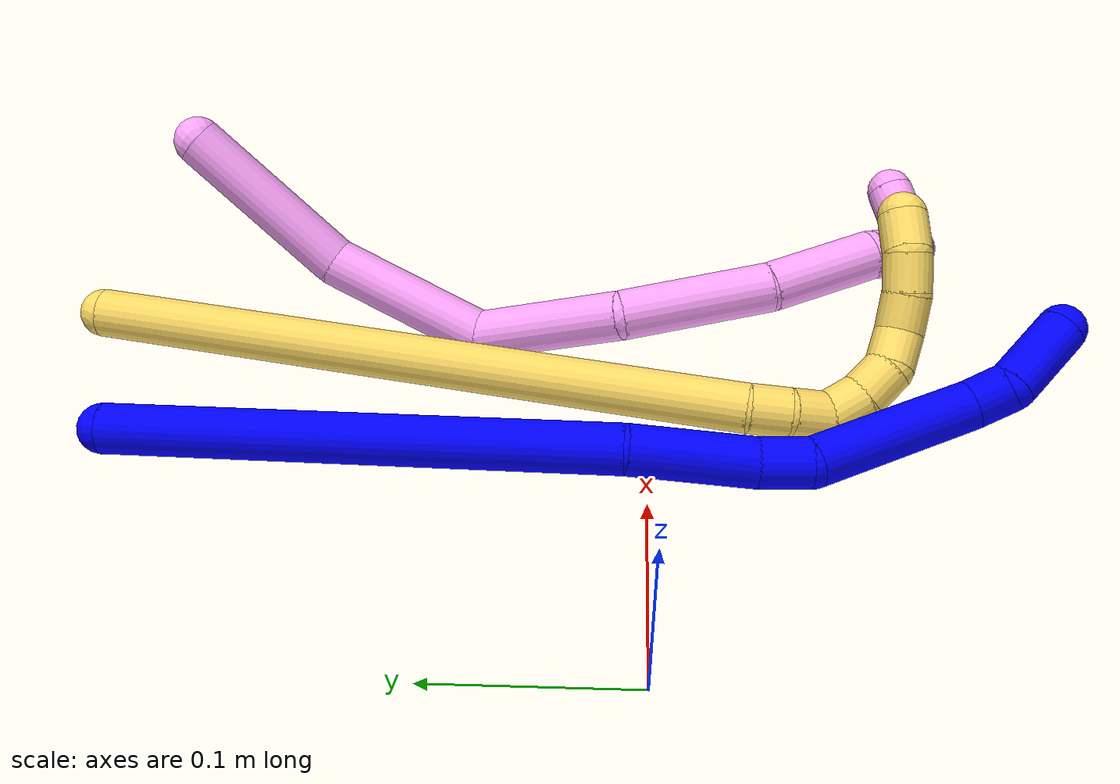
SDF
<sdf version="1.7">
 <world name="default">
  <model name="bin">
   <static>1</static>
   <link name="bottom">
    <collision name="collision-bottom">
     <pose>0 0 -0.01 0 -0 0</pose>
     <geometry><box><size>0.8 0.6 0.02</size></box></geometry>
     <surface>
      <friction><ode><mu>100</mu><mu2>100</mu2></ode></friction>
      <contact><collide_bitmask>65535</collide_bitmask></contact>
     </surface>
    </collision>
   </link>
   <link name="west_wall">
    <collision name="collision-west_wall">
     <pose>-0.41 0 0.1 0 -0 0</pose>
     <geometry><box><size>0.02 0.6 0.2</size></box></geometry>
     <surface>
      <friction><ode><mu>100</mu><mu2>100</mu2></ode></friction>
      <contact><collide_bitmask>65535</collide_bitmask></contact>
     </surface>
    </collision>
   </link>
   <link name="east_wall">
    <collision name="collision-east_wall">
     <pose>0.41 0 0.1 0 -0 0</pose>
     <geometry><box><size>0.02 0.6 0.2</size></box></geometry>
     <surface>
      <friction><ode><mu>100</mu><mu2>100</mu2></ode></friction>
      <contact><collide_bitmask>65535</collide_bitmask></contact>
     </surface>
    </collision>
   </link>
   <link name="south_wall">
    <collision name="collision-south_wall">
     <pose>0 -0.31 0.1 0 -0 0</pose>
     <geometry><box><size>0.8 0.02 0.2</size></box></geometry>
     <surface>
      <friction><ode><mu>100</mu><mu2>100</mu2></ode></friction>
      <contact><collide_bitmask>65535</collide_bitmask></contact>
     </surface>
    </collision>
   </link>
   <link name="north_wall">
    <collision name="collision-north_wall">
     <pose>0 0.31 0.1 0 -0 0</pose>
     <geometry><box><size>0.8 0.02 0.2</size></box></geometry>
     <surface>
      <friction><ode><mu>100</mu><mu2>100</mu2></ode></friction>
      <contact><collide_bitmask>65535</collide_bitmask></contact>
     </surface>
    </collision>
   </link>
  </model>
  <model name="1">
   <static>0</static>
   <link name="1">
    <collision name="collision-cylinder-e_1_1_4">
     <pose>-0.019524 -0.123714 -0.022829 1.75327 -0.153968 -0.184817</pose>
     <geometry><cylinder><radius>0.0125</radius><length>0.254617</length></cylinder></geometry>
     <surface>
      <friction><ode><mu>1.16</mu><mu2>1.16</mu2><slip1>0</slip1><slip2>0</slip2></ode></friction>
      <contact><ode><kp>1e+06</kp><kd>1</kd><max_vel>0</max_vel><min_depth>0.001</min_depth></ode></contact>
     </surface>
    </collision>
    <visual name="visual-cylinder-e_1_1_4">
     <pose>-0.019524 -0.123714 -0.022829 1.75327 -0.153968 -0.184817</pose>
     <geometry><cylinder><radius>0.0125</radius><length>0.254617</length></cylinder></geometry>
     <material><ambient>0 0 1 1</ambient></material>
    </visual>
    <collision name="collision-cylinder-e_2_4_5">
     <pose>-0.037356 -0.277705 -0.054375 1.85114 0.053669 0.071289</pose>
     <geometry><cylinder><radius>0.0125</radius><length>0.063104</length></cylinder></geometry>
     <surface>
      <friction><ode><mu>1.16</mu><mu2>1.16</mu2><slip1>0</slip1><slip2>0</slip2></ode></friction>
      <contact><ode><kp>1e+06</kp><kd>1</kd><max_vel>0</max_vel><min_depth>0.001</min_depth></ode></contact>
     </surface>
    </collision>
    <visual name="visual-cylinder-e_2_4_5">
     <pose>-0.037356 -0.277705 -0.054375 1.85114 0.053669 0.071289</pose>
     <geometry><cylinder><radius>0.0125</radius><length>0.063104</length></cylinder></geometry>
     <material><ambient>0 0 1 1</ambient></material>
    </visual>
    <collision name="collision-cylinder-e_3_5_6">
     <pose>-0.036421 -0.320778 -0.065133 1.72892 -0.05843 -0.068478</pose>
     <geometry><cylinder><radius>0.0125</radius><length>0.025962</length></cylinder></geometry>
     <surface>
      <friction><ode><mu>1.16</mu><mu2>1.16</mu2><slip1>0</slip1><slip2>0</slip2></ode></friction>
      <contact><ode><kp>1e+06</kp><kd>1</kd><max_vel>0</max_vel><min_depth>0.001</min_depth></ode></contact>
     </surface>
    </collision>
    <visual name="visual-cylinder-e_3_5_6">
     <pose>-0.036421 -0.320778 -0.065133 1.72892 -0.05843 -0.068478</pose>
     <geometry><cylinder><radius>0.0125</radius><length>0.025962</length></cylinder></geometry>
     <material><ambient>0 0 1 1</ambient></material>
    </visual>
    <collision name="collision-cylinder-e_4_6_7">
     <pose>-0.021456 -0.377392 -0.062992 1.47566 0.343093 0.31244</pose>
     <geometry><cylinder><radius>0.0125</radius><length>0.093479</length></cylinder></geometry>
     <surface>
      <friction><ode><mu>1.16</mu><mu2>1.16</mu2><slip1>0</slip1><slip2>0</slip2></ode></friction>
      <contact><ode><kp>1e+06</kp><kd>1</kd><max_vel>0</max_vel><min_depth>0.001</min_depth></ode></contact>
     </surface>
    </collision>
    <visual name="visual-cylinder-e_4_6_7">
     <pose>-0.021456 -0.377392 -0.062992 1.47566 0.343093 0.31244</pose>
     <geometry><cylinder><radius>0.0125</radius><length>0.093479</length></cylinder></geometry>
     <material><ambient>0 0 1 1</ambient></material>
    </visual>
    <collision name="collision-cylinder-e_5_7_8">
     <pose>-0.00827 -0.431105 -0.055356 1.23495 -0.237482 -0.169031</pose>
     <geometry><cylinder><radius>0.0125</radius><length>0.02157</length></cylinder></geometry>
     <surface>
      <friction><ode><mu>1.16</mu><mu2>1.16</mu2><slip1>0</slip1><slip2>0</slip2></ode></friction>
      <contact><ode><kp>1e+06</kp><kd>1</kd><max_vel>0</max_vel><min_depth>0.001</min_depth></ode></contact>
     </surface>
    </collision>
    <visual name="visual-cylinder-e_5_7_8">
     <pose>-0.00827 -0.431105 -0.055356 1.23495 -0.237482 -0.169031</pose>
     <geometry><cylinder><radius>0.0125</radius><length>0.02157</length></cylinder></geometry>
     <material><ambient>0 0 1 1</ambient></material>
    </visual>
    <collision name="collision-cylinder-e_6_8_2">
     <pose>-0.004569 -0.457379 -0.041009 0.983873 0.307126 0.165509</pose>
     <geometry><cylinder><radius>0.0125</radius><length>0.041267</length></cylinder></geometry>
     <surface>
      <friction><ode><mu>1.16</mu><mu2>1.16</mu2><slip1>0</slip1><slip2>0</slip2></ode></friction>
      <contact><ode><kp>1e+06</kp><kd>1</kd><max_vel>0</max_vel><min_depth>0.001</min_depth></ode></contact>
     </surface>
    </collision>
    <visual name="visual-cylinder-e_6_8_2">
     <pose>-0.004569 -0.457379 -0.041009 0.983873 0.307126 0.165509</pose>
     <geometry><cylinder><radius>0.0125</radius><length>0.041267</length></cylinder></geometry>
     <material><ambient>0 0 1 1</ambient></material>
    </visual>
    <collision name="collision-sphere-2">
     <pose>0.001669 -0.473755 -0.030117 0 -0 0</pose>
     <geometry><sphere><radius>0.0125</radius></sphere></geometry>
     <surface>
      <friction><ode><mu>1.16</mu><mu2>1.16</mu2><slip1>0</slip1><slip2>0</slip2></ode></friction>
      <contact><ode><kp>1e+06</kp><kd>1</kd><max_vel>0</max_vel><min_depth>0.001</min_depth></ode></contact>
     </surface>
    </collision>
    <visual name="visual-sphere-2">
     <pose>0.001669 -0.473755 -0.030117 0 -0 0</pose>
     <geometry><sphere><radius>0.0125</radius></sphere></geometry>
     <material><ambient>0 0 1 1</ambient></material>
    </visual>
    <collision name="collision-sphere-4">
     <pose>-0.039048 -0.247428 -0.045657 0 -0 0</pose>
     <geometry><sphere><radius>0.0125</radius></sphere></geometry>
     <surface>
      <friction><ode><mu>1.16</mu><mu2>1.16</mu2><slip1>0</slip1><slip2>0</slip2></ode></friction>
      <contact><ode><kp>1e+06</kp><kd>1</kd><max_vel>0</max_vel><min_depth>0.001</min_depth></ode></contact>
     </surface>
    </collision>
    <visual name="visual-sphere-4">
     <pose>-0.039048 -0.247428 -0.045657 0 -0 0</pose>
     <geometry><sphere><radius>0.0125</radius></sphere></geometry>
     <material><ambient>0 0 1 1</ambient></material>
    </visual>
    <collision name="collision-sphere-1">
     <geometry><sphere><radius>0.0125</radius></sphere></geometry>
     <surface>
      <friction><ode><mu>1.16</mu><mu2>1.16</mu2><slip1>0</slip1><slip2>0</slip2></ode></friction>
      <contact><ode><kp>1e+06</kp><kd>1</kd><max_vel>0</max_vel><min_depth>0.001</min_depth></ode></contact>
     </surface>
    </collision>
    <visual name="visual-sphere-1">
     <geometry><sphere><radius>0.0125</radius></sphere></geometry>
     <material><ambient>0 0 1 1</ambient></material>
    </visual>
    <collision name="collision-sphere-8">
     <pose>-0.010807 -0.441002 -0.051901 0 -0 0</pose>
     <geometry><sphere><radius>0.0125</radius></sphere></geometry>
     <surface>
      <friction><ode><mu>1.16</mu><mu2>1.16</mu2><slip1>0</slip1><slip2>0</slip2></ode></friction>
      <contact><ode><kp>1e+06</kp><kd>1</kd><max_vel>0</max_vel><min_depth>0.001</min_depth></ode></contact>
     </surface>
    </collision>
    <visual name="visual-sphere-8">
     <pose>-0.010807 -0.441002 -0.051901 0 -0 0</pose>
     <geometry><sphere><radius>0.0125</radius></sphere></geometry>
     <material><ambient>0 0 1 1</ambient></material>
    </visual>
    <collision name="collision-sphere-5">
     <pose>-0.035663 -0.307981 -0.063092 0 -0 0</pose>
     <geometry><sphere><radius>0.0125</radius></sphere></geometry>
     <surface>
      <friction><ode><mu>1.16</mu><mu2>1.16</mu2><slip1>0</slip1><slip2>0</slip2></ode></friction>
      <contact><ode><kp>1e+06</kp><kd>1</kd><max_vel>0</max_vel><min_depth>0.001</min_depth></ode></contact>
     </surface>
    </collision>
    <visual name="visual-sphere-5">
     <pose>-0.035663 -0.307981 -0.063092 0 -0 0</pose>
     <geometry><sphere><radius>0.0125</radius></sphere></geometry>
     <material><ambient>0 0 1 1</ambient></material>
    </visual>
    <collision name="collision-sphere-6">
     <pose>-0.037179 -0.333575 -0.067173 0 -0 0</pose>
     <geometry><sphere><radius>0.0125</radius></sphere></geometry>
     <surface>
      <friction><ode><mu>1.16</mu><mu2>1.16</mu2><slip1>0</slip1><slip2>0</slip2></ode></friction>
      <contact><ode><kp>1e+06</kp><kd>1</kd><max_vel>0</max_vel><min_depth>0.001</min_depth></ode></contact>
     </surface>
    </collision>
    <visual name="visual-sphere-6">
     <pose>-0.037179 -0.333575 -0.067173 0 -0 0</pose>
     <geometry><sphere><radius>0.0125</radius></sphere></geometry>
     <material><ambient>0 0 1 1</ambient></material>
    </visual>
    <collision name="collision-sphere-7">
     <pose>-0.005733 -0.421208 -0.058811 0 -0 0</pose>
     <geometry><sphere><radius>0.0125</radius></sphere></geometry>
     <surface>
      <friction><ode><mu>1.16</mu><mu2>1.16</mu2><slip1>0</slip1><slip2>0</slip2></ode></friction>
      <contact><ode><kp>1e+06</kp><kd>1</kd><max_vel>0</max_vel><min_depth>0.001</min_depth></ode></contact>
     </surface>
    </collision>
    <visual name="visual-sphere-7">
     <pose>-0.005733 -0.421208 -0.058811 0 -0 0</pose>
     <geometry><sphere><radius>0.0125</radius></sphere></geometry>
     <material><ambient>0 0 1 1</ambient></material>
    </visual>
    <inertial>
     <pose>-0.021293 -0.241608 -0.039419 0 -0 0</pose>
     <mass>0.5</mass>
     <inertia>
      <ixx>0.001216</ixx>
      <ixy>0</ixy>
      <ixz>0</ixz>
      <iyy>-0.000462</iyy>
      <iyz>0</iyz>
      <izz>0.001629</izz>
     </inertia>
    </inertial>
   </link>
   <pose>0.129156 0.264764 0.011497 -0.127699 0.685093 0.086068</pose>
  </model>
  <model name="4">
   <static>0</static>
   <link name="4">
    <collision name="collision-cylinder-e_1_1_4">
     <pose>0.026788 -0.012769 -0.035407 2.79548 0.618539 2.14039</pose>
     <geometry><cylinder><radius>0.0125</radius><length>0.092398</length></cylinder></geometry>
     <surface>
      <friction><ode><mu>1.16</mu><mu2>1.16</mu2><slip1>0</slip1><slip2>0</slip2></ode></friction>
      <contact><ode><kp>1e+06</kp><kd>1</kd><max_vel>0</max_vel><min_depth>0.001</min_depth></ode></contact>
     </surface>
    </collision>
    <visual name="visual-cylinder-e_1_1_4">
     <pose>0.026788 -0.012769 -0.035407 2.79548 0.618539 2.14039</pose>
     <geometry><cylinder><radius>0.0125</radius><length>0.092398</length></cylinder></geometry>
     <material><ambient>1 0.65098 0.996078 1</ambient></material>
    </visual>
    <collision name="collision-cylinder-e_2_4_5">
     <pose>0.06658 -0.045499 -0.105989 2.62542 0.31108 1.07202</pose>
     <geometry><cylinder><radius>0.0125</radius><length>0.084964</length></cylinder></geometry>
     <surface>
      <friction><ode><mu>1.16</mu><mu2>1.16</mu2><slip1>0</slip1><slip2>0</slip2></ode></friction>
      <contact><ode><kp>1e+06</kp><kd>1</kd><max_vel>0</max_vel><min_depth>0.001</min_depth></ode></contact>
     </surface>
    </collision>
    <visual name="visual-cylinder-e_2_4_5">
     <pose>0.06658 -0.045499 -0.105989 2.62542 0.31108 1.07202</pose>
     <geometry><cylinder><radius>0.0125</radius><length>0.084964</length></cylinder></geometry>
     <material><ambient>1 0.65098 0.996078 1</ambient></material>
    </visual>
    <collision name="collision-cylinder-e_3_5_6">
     <pose>0.071682 -0.09505 -0.1646 2.24068 -0.206335 -0.421804</pose>
     <geometry><cylinder><radius>0.0125</radius><length>0.077131</length></cylinder></geometry>
     <surface>
      <friction><ode><mu>1.16</mu><mu2>1.16</mu2><slip1>0</slip1><slip2>0</slip2></ode></friction>
      <contact><ode><kp>1e+06</kp><kd>1</kd><max_vel>0</max_vel><min_depth>0.001</min_depth></ode></contact>
     </surface>
    </collision>
    <visual name="visual-cylinder-e_3_5_6">
     <pose>0.071682 -0.09505 -0.1646 2.24068 -0.206335 -0.421804</pose>
     <geometry><cylinder><radius>0.0125</radius><length>0.077131</length></cylinder></geometry>
     <material><ambient>1 0.65098 0.996078 1</ambient></material>
    </visual>
    <collision name="collision-cylinder-e_4_6_7">
     <pose>0.068104 -0.15989 -0.2026 1.96258 0.112867 0.168529</pose>
     <geometry><cylinder><radius>0.0125</radius><length>0.076767</length></cylinder></geometry>
     <surface>
      <friction><ode><mu>1.16</mu><mu2>1.16</mu2><slip1>0</slip1><slip2>0</slip2></ode></friction>
      <contact><ode><kp>1e+06</kp><kd>1</kd><max_vel>0</max_vel><min_depth>0.001</min_depth></ode></contact>
     </surface>
    </collision>
    <visual name="visual-cylinder-e_4_6_7">
     <pose>0.068104 -0.15989 -0.2026 1.96258 0.112867 0.168529</pose>
     <geometry><cylinder><radius>0.0125</radius><length>0.076767</length></cylinder></geometry>
     <material><ambient>1 0.65098 0.996078 1</ambient></material>
    </visual>
    <collision name="collision-cylinder-e_5_7_8">
     <pose>0.076918 -0.222391 -0.223073 1.78435 0.159677 0.197791</pose>
     <geometry><cylinder><radius>0.0125</radius><length>0.05649</length></cylinder></geometry>
     <surface>
      <friction><ode><mu>1.16</mu><mu2>1.16</mu2><slip1>0</slip1><slip2>0</slip2></ode></friction>
      <contact><ode><kp>1e+06</kp><kd>1</kd><max_vel>0</max_vel><min_depth>0.001</min_depth></ode></contact>
     </surface>
    </collision>
    <visual name="visual-cylinder-e_5_7_8">
     <pose>0.076918 -0.222391 -0.223073 1.78435 0.159677 0.197791</pose>
     <geometry><cylinder><radius>0.0125</radius><length>0.05649</length></cylinder></geometry>
     <material><ambient>1 0.65098 0.996078 1</ambient></material>
    </visual>
    <collision name="collision-cylinder-e_6_8_9">
     <pose>0.087771 -0.258726 -0.229283 1.60385 0.610798 0.630016</pose>
     <geometry><cylinder><radius>0.0125</radius><length>0.022187</length></cylinder></geometry>
     <surface>
      <friction><ode><mu>1.16</mu><mu2>1.16</mu2><slip1>0</slip1><slip2>0</slip2></ode></friction>
      <contact><ode><kp>1e+06</kp><kd>1</kd><max_vel>0</max_vel><min_depth>0.001</min_depth></ode></contact>
     </surface>
    </collision>
    <visual name="visual-cylinder-e_6_8_9">
     <pose>0.087771 -0.258726 -0.229283 1.60385 0.610798 0.630016</pose>
     <geometry><cylinder><radius>0.0125</radius><length>0.022187</length></cylinder></geometry>
     <material><ambient>1 0.65098 0.996078 1</ambient></material>
    </visual>
    <collision name="collision-cylinder-e_7_9_10">
     <pose>0.102536 -0.275523 -0.227083 1.25733 0.803146 0.59893</pose>
     <geometry><cylinder><radius>0.0125</radius><length>0.023355</length></cylinder></geometry>
     <surface>
      <friction><ode><mu>1.16</mu><mu2>1.16</mu2><slip1>0</slip1><slip2>0</slip2></ode></friction>
      <contact><ode><kp>1e+06</kp><kd>1</kd><max_vel>0</max_vel><min_depth>0.001</min_depth></ode></contact>
     </surface>
    </collision>
    <visual name="visual-cylinder-e_7_9_10">
     <pose>0.102536 -0.275523 -0.227083 1.25733 0.803146 0.59893</pose>
     <geometry><cylinder><radius>0.0125</radius><length>0.023355</length></cylinder></geometry>
     <material><ambient>1 0.65098 0.996078 1</ambient></material>
    </visual>
    <collision name="collision-cylinder-e_8_10_11">
     <pose>0.12095 -0.288856 -0.21884 0.774459 0.894588 0.3864</pose>
     <geometry><cylinder><radius>0.0125</radius><length>0.025673</length></cylinder></geometry>
     <surface>
      <friction><ode><mu>1.16</mu><mu2>1.16</mu2><slip1>0</slip1><slip2>0</slip2></ode></friction>
      <contact><ode><kp>1e+06</kp><kd>1</kd><max_vel>0</max_vel><min_depth>0.001</min_depth></ode></contact>
     </surface>
    </collision>
    <visual name="visual-cylinder-e_8_10_11">
     <pose>0.12095 -0.288856 -0.21884 0.774459 0.894588 0.3864</pose>
     <geometry><cylinder><radius>0.0125</radius><length>0.025673</length></cylinder></geometry>
     <material><ambient>1 0.65098 0.996078 1</ambient></material>
    </visual>
    <collision name="collision-cylinder-e_9_11_12">
     <pose>0.132485 -0.299363 -0.203966 0.491615 0.145987 0.036686</pose>
     <geometry><cylinder><radius>0.0125</radius><length>0.020939</length></cylinder></geometry>
     <surface>
      <friction><ode><mu>1.16</mu><mu2>1.16</mu2><slip1>0</slip1><slip2>0</slip2></ode></friction>
      <contact><ode><kp>1e+06</kp><kd>1</kd><max_vel>0</max_vel><min_depth>0.001</min_depth></ode></contact>
     </surface>
    </collision>
    <visual name="visual-cylinder-e_9_11_12">
     <pose>0.132485 -0.299363 -0.203966 0.491615 0.145987 0.036686</pose>
     <geometry><cylinder><radius>0.0125</radius><length>0.020939</length></cylinder></geometry>
     <material><ambient>1 0.65098 0.996078 1</ambient></material>
    </visual>
    <collision name="collision-cylinder-e_10_12_2">
     <pose>0.132257 -0.307781 -0.185591 0.364607 -0.175177 -0.032374</pose>
     <geometry><cylinder><radius>0.0125</radius><length>0.020096</length></cylinder></geometry>
     <surface>
      <friction><ode><mu>1.16</mu><mu2>1.16</mu2><slip1>0</slip1><slip2>0</slip2></ode></friction>
      <contact><ode><kp>1e+06</kp><kd>1</kd><max_vel>0</max_vel><min_depth>0.001</min_depth></ode></contact>
     </surface>
    </collision>
    <visual name="visual-cylinder-e_10_12_2">
     <pose>0.132257 -0.307781 -0.185591 0.364607 -0.175177 -0.032374</pose>
     <geometry><cylinder><radius>0.0125</radius><length>0.020096</length></cylinder></geometry>
     <material><ambient>1 0.65098 0.996078 1</ambient></material>
    </visual>
    <collision name="collision-sphere-2">
     <pose>0.130506 -0.311309 -0.176347 0 -0 0</pose>
     <geometry><sphere><radius>0.0125</radius></sphere></geometry>
     <surface>
      <friction><ode><mu>1.16</mu><mu2>1.16</mu2><slip1>0</slip1><slip2>0</slip2></ode></friction>
      <contact><ode><kp>1e+06</kp><kd>1</kd><max_vel>0</max_vel><min_depth>0.001</min_depth></ode></contact>
     </surface>
    </collision>
    <visual name="visual-sphere-2">
     <pose>0.130506 -0.311309 -0.176347 0 -0 0</pose>
     <geometry><sphere><radius>0.0125</radius></sphere></geometry>
     <material><ambient>1 0.65098 0.996078 1</ambient></material>
    </visual>
    <collision name="collision-sphere-12">
     <pose>0.134008 -0.304253 -0.194835 0 -0 0</pose>
     <geometry><sphere><radius>0.0125</radius></sphere></geometry>
     <surface>
      <friction><ode><mu>1.16</mu><mu2>1.16</mu2><slip1>0</slip1><slip2>0</slip2></ode></friction>
      <contact><ode><kp>1e+06</kp><kd>1</kd><max_vel>0</max_vel><min_depth>0.001</min_depth></ode></contact>
     </surface>
    </collision>
    <visual name="visual-sphere-12">
     <pose>0.134008 -0.304253 -0.194835 0 -0 0</pose>
     <geometry><sphere><radius>0.0125</radius></sphere></geometry>
     <material><ambient>1 0.65098 0.996078 1</ambient></material>
    </visual>
    <collision name="collision-sphere-11">
     <pose>0.130962 -0.294474 -0.213098 0 -0 0</pose>
     <geometry><sphere><radius>0.0125</radius></sphere></geometry>
     <surface>
      <friction><ode><mu>1.16</mu><mu2>1.16</mu2><slip1>0</slip1><slip2>0</slip2></ode></friction>
      <contact><ode><kp>1e+06</kp><kd>1</kd><max_vel>0</max_vel><min_depth>0.001</min_depth></ode></contact>
     </surface>
    </collision>
    <visual name="visual-sphere-11">
     <pose>0.130962 -0.294474 -0.213098 0 -0 0</pose>
     <geometry><sphere><radius>0.0125</radius></sphere></geometry>
     <material><ambient>1 0.65098 0.996078 1</ambient></material>
    </visual>
    <collision name="collision-sphere-10">
     <pose>0.110938 -0.283238 -0.224582 0 -0 0</pose>
     <geometry><sphere><radius>0.0125</radius></sphere></geometry>
     <surface>
      <friction><ode><mu>1.16</mu><mu2>1.16</mu2><slip1>0</slip1><slip2>0</slip2></ode></friction>
      <contact><ode><kp>1e+06</kp><kd>1</kd><max_vel>0</max_vel><min_depth>0.001</min_depth></ode></contact>
     </surface>
    </collision>
    <visual name="visual-sphere-10">
     <pose>0.110938 -0.283238 -0.224582 0 -0 0</pose>
     <geometry><sphere><radius>0.0125</radius></sphere></geometry>
     <material><ambient>1 0.65098 0.996078 1</ambient></material>
    </visual>
    <collision name="collision-sphere-9">
     <pose>0.094133 -0.267809 -0.229584 0 -0 0</pose>
     <geometry><sphere><radius>0.0125</radius></sphere></geometry>
     <surface>
      <friction><ode><mu>1.16</mu><mu2>1.16</mu2><slip1>0</slip1><slip2>0</slip2></ode></friction>
      <contact><ode><kp>1e+06</kp><kd>1</kd><max_vel>0</max_vel><min_depth>0.001</min_depth></ode></contact>
     </surface>
    </collision>
    <visual name="visual-sphere-9">
     <pose>0.094133 -0.267809 -0.229584 0 -0 0</pose>
     <geometry><sphere><radius>0.0125</radius></sphere></geometry>
     <material><ambient>1 0.65098 0.996078 1</ambient></material>
    </visual>
    <collision name="collision-sphere-4">
     <pose>0.053576 -0.025538 -0.070815 0 -0 0</pose>
     <geometry><sphere><radius>0.0125</radius></sphere></geometry>
     <surface>
      <friction><ode><mu>1.16</mu><mu2>1.16</mu2><slip1>0</slip1><slip2>0</slip2></ode></friction>
      <contact><ode><kp>1e+06</kp><kd>1</kd><max_vel>0</max_vel><min_depth>0.001</min_depth></ode></contact>
     </surface>
    </collision>
    <visual name="visual-sphere-4">
     <pose>0.053576 -0.025538 -0.070815 0 -0 0</pose>
     <geometry><sphere><radius>0.0125</radius></sphere></geometry>
     <material><ambient>1 0.65098 0.996078 1</ambient></material>
    </visual>
    <collision name="collision-sphere-1">
     <geometry><sphere><radius>0.0125</radius></sphere></geometry>
     <surface>
      <friction><ode><mu>1.16</mu><mu2>1.16</mu2><slip1>0</slip1><slip2>0</slip2></ode></friction>
      <contact><ode><kp>1e+06</kp><kd>1</kd><max_vel>0</max_vel><min_depth>0.001</min_depth></ode></contact>
     </surface>
    </collision>
    <visual name="visual-sphere-1">
     <geometry><sphere><radius>0.0125</radius></sphere></geometry>
     <material><ambient>1 0.65098 0.996078 1</ambient></material>
    </visual>
    <collision name="collision-sphere-8">
     <pose>0.081409 -0.249644 -0.228983 0 -0 0</pose>
     <geometry><sphere><radius>0.0125</radius></sphere></geometry>
     <surface>
      <friction><ode><mu>1.16</mu><mu2>1.16</mu2><slip1>0</slip1><slip2>0</slip2></ode></friction>
      <contact><ode><kp>1e+06</kp><kd>1</kd><max_vel>0</max_vel><min_depth>0.001</min_depth></ode></contact>
     </surface>
    </collision>
    <visual name="visual-sphere-8">
     <pose>0.081409 -0.249644 -0.228983 0 -0 0</pose>
     <geometry><sphere><radius>0.0125</radius></sphere></geometry>
     <material><ambient>1 0.65098 0.996078 1</ambient></material>
    </visual>
    <collision name="collision-sphere-5">
     <pose>0.079583 -0.06546 -0.141163 0 -0 0</pose>
     <geometry><sphere><radius>0.0125</radius></sphere></geometry>
     <surface>
      <friction><ode><mu>1.16</mu><mu2>1.16</mu2><slip1>0</slip1><slip2>0</slip2></ode></friction>
      <contact><ode><kp>1e+06</kp><kd>1</kd><max_vel>0</max_vel><min_depth>0.001</min_depth></ode></contact>
     </surface>
    </collision>
    <visual name="visual-sphere-5">
     <pose>0.079583 -0.06546 -0.141163 0 -0 0</pose>
     <geometry><sphere><radius>0.0125</radius></sphere></geometry>
     <material><ambient>1 0.65098 0.996078 1</ambient></material>
    </visual>
    <collision name="collision-sphere-6">
     <pose>0.063781 -0.12464 -0.188037 0 -0 0</pose>
     <geometry><sphere><radius>0.0125</radius></sphere></geometry>
     <surface>
      <friction><ode><mu>1.16</mu><mu2>1.16</mu2><slip1>0</slip1><slip2>0</slip2></ode></friction>
      <contact><ode><kp>1e+06</kp><kd>1</kd><max_vel>0</max_vel><min_depth>0.001</min_depth></ode></contact>
     </surface>
    </collision>
    <visual name="visual-sphere-6">
     <pose>0.063781 -0.12464 -0.188037 0 -0 0</pose>
     <geometry><sphere><radius>0.0125</radius></sphere></geometry>
     <material><ambient>1 0.65098 0.996078 1</ambient></material>
    </visual>
    <collision name="collision-sphere-7">
     <pose>0.072427 -0.195139 -0.217163 0 -0 0</pose>
     <geometry><sphere><radius>0.0125</radius></sphere></geometry>
     <surface>
      <friction><ode><mu>1.16</mu><mu2>1.16</mu2><slip1>0</slip1><slip2>0</slip2></ode></friction>
      <contact><ode><kp>1e+06</kp><kd>1</kd><max_vel>0</max_vel><min_depth>0.001</min_depth></ode></contact>
     </surface>
    </collision>
    <visual name="visual-sphere-7">
     <pose>0.072427 -0.195139 -0.217163 0 -0 0</pose>
     <geometry><sphere><radius>0.0125</radius></sphere></geometry>
     <material><ambient>1 0.65098 0.996078 1</ambient></material>
    </visual>
    <inertial>
     <pose>0.072227 -0.138517 -0.154273 0 -0 0</pose>
     <mass>0.5</mass>
     <inertia><ixx>0.000193</ixx><ixy>0</ixy><ixz>0</ixz><iyy>6.4e-05</iyy><iyz>0</iyz><izz>6.2e-05</izz></inertia>
    </inertial>
   </link>
   <pose>0.260061 0.23216 0.086573 -1.20382 1.30919 -0.594529</pose>
  </model>
  <model name="5">
   <static>0</static>
   <link name="5">
    <collision name="collision-cylinder-e_1_1_4">
     <pose>0.049221 -0.149306 0.063905 1.16638 0.294271 0.194934</pose>
     <geometry><cylinder><radius>0.0125</radius><length>0.339405</length></cylinder></geometry>
     <surface>
      <friction><ode><mu>1.16</mu><mu2>1.16</mu2><slip1>0</slip1><slip2>0</slip2></ode></friction>
      <contact><ode><kp>1e+06</kp><kd>1</kd><max_vel>0</max_vel><min_depth>0.001</min_depth></ode></contact>
     </surface>
    </collision>
    <visual name="visual-cylinder-e_1_1_4">
     <pose>0.049221 -0.149306 0.063905 1.16638 0.294271 0.194934</pose>
     <geometry><cylinder><radius>0.0125</radius><length>0.339405</length></cylinder></geometry>
     <material><ambient>1 0.858824 0.4 1</ambient></material>
    </visual>
    <collision name="collision-cylinder-e_2_4_5">
     <pose>0.102024 -0.30645 0.133128 0.97452 0.361635 0.193134</pose>
     <geometry><cylinder><radius>0.0125</radius><length>0.020253</length></cylinder></geometry>
     <surface>
      <friction><ode><mu>1.16</mu><mu2>1.16</mu2><slip1>0</slip1><slip2>0</slip2></ode></friction>
      <contact><ode><kp>1e+06</kp><kd>1</kd><max_vel>0</max_vel><min_depth>0.001</min_depth></ode></contact>
     </surface>
    </collision>
    <visual name="visual-cylinder-e_2_4_5">
     <pose>0.102024 -0.30645 0.133128 0.97452 0.361635 0.193134</pose>
     <geometry><cylinder><radius>0.0125</radius><length>0.020253</length></cylinder></geometry>
     <material><ambient>1 0.858824 0.4 1</ambient></material>
    </visual>
    <collision name="collision-cylinder-e_3_5_6">
     <pose>0.110123 -0.320304 0.145124 0.733458 0.465579 0.181632</pose>
     <geometry><cylinder><radius>0.0125</radius><length>0.020118</length></cylinder></geometry>
     <surface>
      <friction><ode><mu>1.16</mu><mu2>1.16</mu2><slip1>0</slip1><slip2>0</slip2></ode></friction>
      <contact><ode><kp>1e+06</kp><kd>1</kd><max_vel>0</max_vel><min_depth>0.001</min_depth></ode></contact>
     </surface>
    </collision>
    <visual name="visual-cylinder-e_3_5_6">
     <pose>0.110123 -0.320304 0.145124 0.733458 0.465579 0.181632</pose>
     <geometry><cylinder><radius>0.0125</radius><length>0.020118</length></cylinder></geometry>
     <material><ambient>1 0.858824 0.4 1</ambient></material>
    </visual>
    <collision name="collision-cylinder-e_4_6_7">
     <pose>0.113414 -0.331754 0.160171 0.575804 -0.122176 -0.036221</pose>
     <geometry><cylinder><radius>0.0125</radius><length>0.020107</length></cylinder></geometry>
     <surface>
      <friction><ode><mu>1.16</mu><mu2>1.16</mu2><slip1>0</slip1><slip2>0</slip2></ode></friction>
      <contact><ode><kp>1e+06</kp><kd>1</kd><max_vel>0</max_vel><min_depth>0.001</min_depth></ode></contact>
     </surface>
    </collision>
    <visual name="visual-cylinder-e_4_6_7">
     <pose>0.113414 -0.331754 0.160171 0.575804 -0.122176 -0.036221</pose>
     <geometry><cylinder><radius>0.0125</radius><length>0.020107</length></cylinder></geometry>
     <material><ambient>1 0.858824 0.4 1</ambient></material>
    </visual>
    <collision name="collision-cylinder-e_5_7_8">
     <pose>0.108567 -0.341305 0.176924 0.456513 -0.369827 -0.086851</pose>
     <geometry><cylinder><radius>0.0125</radius><length>0.020036</length></cylinder></geometry>
     <surface>
      <friction><ode><mu>1.16</mu><mu2>1.16</mu2><slip1>0</slip1><slip2>0</slip2></ode></friction>
      <contact><ode><kp>1e+06</kp><kd>1</kd><max_vel>0</max_vel><min_depth>0.001</min_depth></ode></contact>
     </surface>
    </collision>
    <visual name="visual-cylinder-e_5_7_8">
     <pose>0.108567 -0.341305 0.176924 0.456513 -0.369827 -0.086851</pose>
     <geometry><cylinder><radius>0.0125</radius><length>0.020036</length></cylinder></geometry>
     <material><ambient>1 0.858824 0.4 1</ambient></material>
    </visual>
    <collision name="collision-cylinder-e_6_8_9">
     <pose>0.099714 -0.345066 0.193828 -0.041892 -0.550381 0.01183</pose>
     <geometry><cylinder><radius>0.0125</radius><length>0.020008</length></cylinder></geometry>
     <surface>
      <friction><ode><mu>1.16</mu><mu2>1.16</mu2><slip1>0</slip1><slip2>0</slip2></ode></friction>
      <contact><ode><kp>1e+06</kp><kd>1</kd><max_vel>0</max_vel><min_depth>0.001</min_depth></ode></contact>
     </surface>
    </collision>
    <visual name="visual-cylinder-e_6_8_9">
     <pose>0.099714 -0.345066 0.193828 -0.041892 -0.550381 0.01183</pose>
     <geometry><cylinder><radius>0.0125</radius><length>0.020008</length></cylinder></geometry>
     <material><ambient>1 0.858824 0.4 1</ambient></material>
    </visual>
    <collision name="collision-cylinder-e_7_9_10">
     <pose>0.085966 -0.34589 0.207489 0.225739 -1.01609 -0.12606</pose>
     <geometry><cylinder><radius>0.0125</radius><length>0.020035</length></cylinder></geometry>
     <surface>
      <friction><ode><mu>1.16</mu><mu2>1.16</mu2><slip1>0</slip1><slip2>0</slip2></ode></friction>
      <contact><ode><kp>1e+06</kp><kd>1</kd><max_vel>0</max_vel><min_depth>0.001</min_depth></ode></contact>
     </surface>
    </collision>
    <visual name="visual-cylinder-e_7_9_10">
     <pose>0.085966 -0.34589 0.207489 0.225739 -1.01609 -0.12606</pose>
     <geometry><cylinder><radius>0.0125</radius><length>0.020035</length></cylinder></geometry>
     <material><ambient>1 0.858824 0.4 1</ambient></material>
    </visual>
    <collision name="collision-cylinder-e_8_10_11">
     <pose>0.06883 -0.346233 0.217632 -0.166019 -1.03917 0.095112</pose>
     <geometry><cylinder><radius>0.0125</radius><length>0.020002</length></cylinder></geometry>
     <surface>
      <friction><ode><mu>1.16</mu><mu2>1.16</mu2><slip1>0</slip1><slip2>0</slip2></ode></friction>
      <contact><ode><kp>1e+06</kp><kd>1</kd><max_vel>0</max_vel><min_depth>0.001</min_depth></ode></contact>
     </surface>
    </collision>
    <visual name="visual-cylinder-e_8_10_11">
     <pose>0.06883 -0.346233 0.217632 -0.166019 -1.03917 0.095112</pose>
     <geometry><cylinder><radius>0.0125</radius><length>0.020002</length></cylinder></geometry>
     <material><ambient>1 0.858824 0.4 1</ambient></material>
    </visual>
    <collision name="collision-cylinder-e_9_11_2">
     <pose>0.053547 -0.34205 0.229324 -0.463464 -0.727591 0.179207</pose>
     <geometry><cylinder><radius>0.0125</radius><length>0.020036</length></cylinder></geometry>
     <surface>
      <friction><ode><mu>1.16</mu><mu2>1.16</mu2><slip1>0</slip1><slip2>0</slip2></ode></friction>
      <contact><ode><kp>1e+06</kp><kd>1</kd><max_vel>0</max_vel><min_depth>0.001</min_depth></ode></contact>
     </surface>
    </collision>
    <visual name="visual-cylinder-e_9_11_2">
     <pose>0.053547 -0.34205 0.229324 -0.463464 -0.727591 0.179207</pose>
     <geometry><cylinder><radius>0.0125</radius><length>0.020036</length></cylinder></geometry>
     <material><ambient>1 0.858824 0.4 1</ambient></material>
    </visual>
    <collision name="collision-sphere-2">
     <pose>0.046884 -0.338706 0.236016 0 -0 0</pose>
     <geometry><sphere><radius>0.0125</radius></sphere></geometry>
     <surface>
      <friction><ode><mu>1.16</mu><mu2>1.16</mu2><slip1>0</slip1><slip2>0</slip2></ode></friction>
      <contact><ode><kp>1e+06</kp><kd>1</kd><max_vel>0</max_vel><min_depth>0.001</min_depth></ode></contact>
     </surface>
    </collision>
    <visual name="visual-sphere-2">
     <pose>0.046884 -0.338706 0.236016 0 -0 0</pose>
     <geometry><sphere><radius>0.0125</radius></sphere></geometry>
     <material><ambient>1 0.858824 0.4 1</ambient></material>
    </visual>
    <collision name="collision-sphere-11">
     <pose>0.060209 -0.345395 0.222632 0 -0 0</pose>
     <geometry><sphere><radius>0.0125</radius></sphere></geometry>
     <surface>
      <friction><ode><mu>1.16</mu><mu2>1.16</mu2><slip1>0</slip1><slip2>0</slip2></ode></friction>
      <contact><ode><kp>1e+06</kp><kd>1</kd><max_vel>0</max_vel><min_depth>0.001</min_depth></ode></contact>
     </surface>
    </collision>
    <visual name="visual-sphere-11">
     <pose>0.060209 -0.345395 0.222632 0 -0 0</pose>
     <geometry><sphere><radius>0.0125</radius></sphere></geometry>
     <material><ambient>1 0.858824 0.4 1</ambient></material>
    </visual>
    <collision name="collision-sphere-10">
     <pose>0.077451 -0.347071 0.212632 0 -0 0</pose>
     <geometry><sphere><radius>0.0125</radius></sphere></geometry>
     <surface>
      <friction><ode><mu>1.16</mu><mu2>1.16</mu2><slip1>0</slip1><slip2>0</slip2></ode></friction>
      <contact><ode><kp>1e+06</kp><kd>1</kd><max_vel>0</max_vel><min_depth>0.001</min_depth></ode></contact>
     </surface>
    </collision>
    <visual name="visual-sphere-10">
     <pose>0.077451 -0.347071 0.212632 0 -0 0</pose>
     <geometry><sphere><radius>0.0125</radius></sphere></geometry>
     <material><ambient>1 0.858824 0.4 1</ambient></material>
    </visual>
    <collision name="collision-sphere-9">
     <pose>0.094482 -0.344709 0.202347 0 -0 0</pose>
     <geometry><sphere><radius>0.0125</radius></sphere></geometry>
     <surface>
      <friction><ode><mu>1.16</mu><mu2>1.16</mu2><slip1>0</slip1><slip2>0</slip2></ode></friction>
      <contact><ode><kp>1e+06</kp><kd>1</kd><max_vel>0</max_vel><min_depth>0.001</min_depth></ode></contact>
     </surface>
    </collision>
    <visual name="visual-sphere-9">
     <pose>0.094482 -0.344709 0.202347 0 -0 0</pose>
     <geometry><sphere><radius>0.0125</radius></sphere></geometry>
     <material><ambient>1 0.858824 0.4 1</ambient></material>
    </visual>
    <collision name="collision-sphere-4">
     <pose>0.098442 -0.298613 0.127809 0 -0 0</pose>
     <geometry><sphere><radius>0.0125</radius></sphere></geometry>
     <surface>
      <friction><ode><mu>1.16</mu><mu2>1.16</mu2><slip1>0</slip1><slip2>0</slip2></ode></friction>
      <contact><ode><kp>1e+06</kp><kd>1</kd><max_vel>0</max_vel><min_depth>0.001</min_depth></ode></contact>
     </surface>
    </collision>
    <visual name="visual-sphere-4">
     <pose>0.098442 -0.298613 0.127809 0 -0 0</pose>
     <geometry><sphere><radius>0.0125</radius></sphere></geometry>
     <material><ambient>1 0.858824 0.4 1</ambient></material>
    </visual>
    <collision name="collision-sphere-1">
     <geometry><sphere><radius>0.0125</radius></sphere></geometry>
     <surface>
      <friction><ode><mu>1.16</mu><mu2>1.16</mu2><slip1>0</slip1><slip2>0</slip2></ode></friction>
      <contact><ode><kp>1e+06</kp><kd>1</kd><max_vel>0</max_vel><min_depth>0.001</min_depth></ode></contact>
     </surface>
    </collision>
    <visual name="visual-sphere-1">
     <geometry><sphere><radius>0.0125</radius></sphere></geometry>
     <material><ambient>1 0.858824 0.4 1</ambient></material>
    </visual>
    <collision name="collision-sphere-8">
     <pose>0.104946 -0.345423 0.185309 0 -0 0</pose>
     <geometry><sphere><radius>0.0125</radius></sphere></geometry>
     <surface>
      <friction><ode><mu>1.16</mu><mu2>1.16</mu2><slip1>0</slip1><slip2>0</slip2></ode></friction>
      <contact><ode><kp>1e+06</kp><kd>1</kd><max_vel>0</max_vel><min_depth>0.001</min_depth></ode></contact>
     </surface>
    </collision>
    <visual name="visual-sphere-8">
     <pose>0.104946 -0.345423 0.185309 0 -0 0</pose>
     <geometry><sphere><radius>0.0125</radius></sphere></geometry>
     <material><ambient>1 0.858824 0.4 1</ambient></material>
    </visual>
    <collision name="collision-sphere-5">
     <pose>0.105607 -0.314287 0.138447 0 -0 0</pose>
     <geometry><sphere><radius>0.0125</radius></sphere></geometry>
     <surface>
      <friction><ode><mu>1.16</mu><mu2>1.16</mu2><slip1>0</slip1><slip2>0</slip2></ode></friction>
      <contact><ode><kp>1e+06</kp><kd>1</kd><max_vel>0</max_vel><min_depth>0.001</min_depth></ode></contact>
     </surface>
    </collision>
    <visual name="visual-sphere-5">
     <pose>0.105607 -0.314287 0.138447 0 -0 0</pose>
     <geometry><sphere><radius>0.0125</radius></sphere></geometry>
     <material><ambient>1 0.858824 0.4 1</ambient></material>
    </visual>
    <collision name="collision-sphere-6">
     <pose>0.114639 -0.326321 0.151801 0 -0 0</pose>
     <geometry><sphere><radius>0.0125</radius></sphere></geometry>
     <surface>
      <friction><ode><mu>1.16</mu><mu2>1.16</mu2><slip1>0</slip1><slip2>0</slip2></ode></friction>
      <contact><ode><kp>1e+06</kp><kd>1</kd><max_vel>0</max_vel><min_depth>0.001</min_depth></ode></contact>
     </surface>
    </collision>
    <visual name="visual-sphere-6">
     <pose>0.114639 -0.326321 0.151801 0 -0 0</pose>
     <geometry><sphere><radius>0.0125</radius></sphere></geometry>
     <material><ambient>1 0.858824 0.4 1</ambient></material>
    </visual>
    <collision name="collision-sphere-7">
     <pose>0.112188 -0.337188 0.16854 0 -0 0</pose>
     <geometry><sphere><radius>0.0125</radius></sphere></geometry>
     <surface>
      <friction><ode><mu>1.16</mu><mu2>1.16</mu2><slip1>0</slip1><slip2>0</slip2></ode></friction>
      <contact><ode><kp>1e+06</kp><kd>1</kd><max_vel>0</max_vel><min_depth>0.001</min_depth></ode></contact>
     </surface>
    </collision>
    <visual name="visual-sphere-7">
     <pose>0.112188 -0.337188 0.16854 0 -0 0</pose>
     <geometry><sphere><radius>0.0125</radius></sphere></geometry>
     <material><ambient>1 0.858824 0.4 1</ambient></material>
    </visual>
    <inertial>
     <pose>0.06322 -0.208895 0.102108 0 -0 0</pose>
     <mass>0.5</mass>
     <inertia>
      <ixx>0.003691</ixx>
      <ixy>0</ixy>
      <ixz>0</ixz>
      <iyy>0.002023</iyy>
      <iyz>0</iyz>
      <izz>0.001954</izz>
     </inertia>
    </inertial>
   </link>
   <pose>0.208734 0.28488 0.01242 -1.84762 1.17559 -2.40371</pose>
  </model>
 </world>
</sdf>
